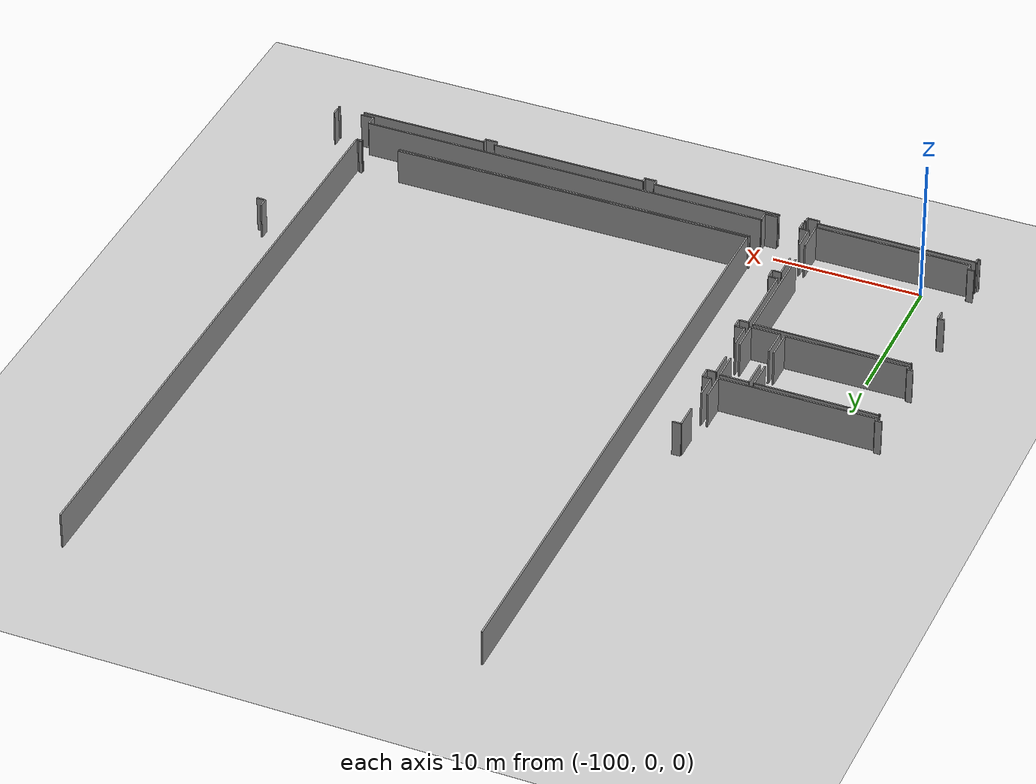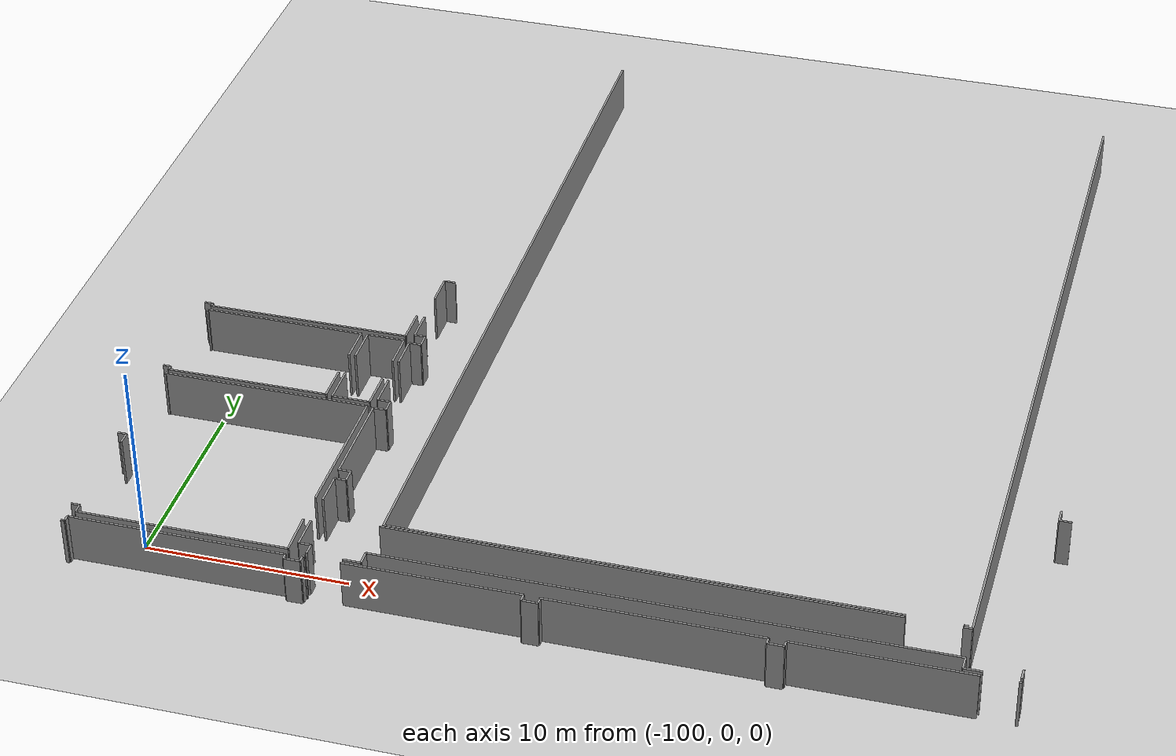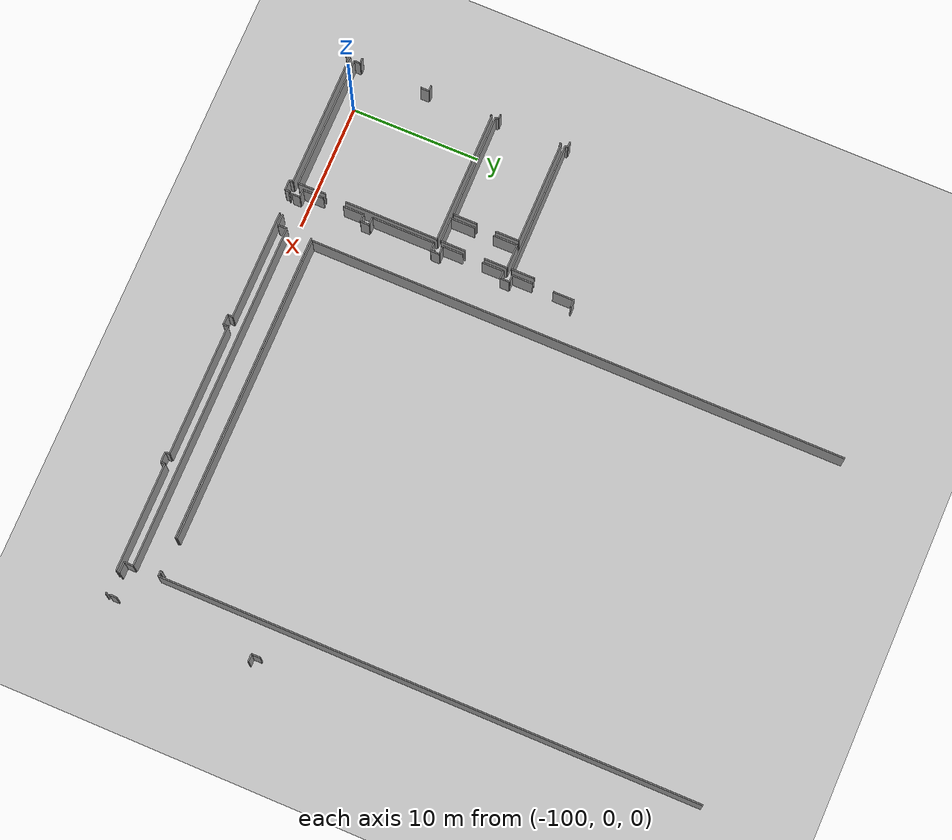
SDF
<sdf version="1.6">
 <world name="default">
  <model name="ground_plane">
   <static>1</static>
   <link name="link">
    <collision name="collision">
     <geometry><plane><normal>0 0 1</normal><size>100 100</size></plane></geometry>
     <surface><friction><ode><mu>100</mu><mu2>50</mu2></ode></friction></surface>
    </collision>
    <visual name="visual">
     <cast_shadows>0</cast_shadows>
     <geometry><plane><normal>0 0 1</normal><size>100 100</size></plane></geometry>
     <material>
      <script><uri>file://media/materials/scripts/gazebo.material</uri><name>Gazebo/Grey</name></script>
     </material>
    </visual>
   </link>
  </model>
  <model name="50015848">
   <static>1</static>
   <link name="Wall_149">
    <collision name="Wall_149_Collision">
     <geometry><box><size>0.181669404817 0.1 2.5</size></box></geometry>
     <pose>0.0908347024085 0 1.25 0 0 0</pose>
    </collision>
    <visual name="Wall_149_Visual">
     <pose>0.0908347024085 0 1.25 0 0 0</pose>
     <geometry><box><size>0.181669404817 0.1 2.5</size></box></geometry>
     <material>
      <script><uri>file://media/materials/scripts/gazebo.material</uri><name>Gazebo/Grey</name></script>
      <ambient>1 1 1 1</ambient>
     </material>
    </visual>
    <pose>28.6126775305 -45.6515423504 0 0 0 0.0</pose>
   </link>
   <link name="Wall_150">
    <collision name="Wall_150_Collision">
     <geometry><box><size>0.339234628827 0.1 2.5</size></box></geometry>
     <pose>0.169617314414 0 1.25 0 0 0</pose>
    </collision>
    <visual name="Wall_150_Visual">
     <pose>0.169617314414 0 1.25 0 0 0</pose>
     <geometry><box><size>0.339234628827 0.1 2.5</size></box></geometry>
     <material>
      <script><uri>file://media/materials/scripts/gazebo.material</uri><name>Gazebo/Grey</name></script>
      <ambient>1 1 1 1</ambient>
     </material>
    </visual>
    <pose>28.7943469353 -45.6515423504 0 0 0 1.57079632679</pose>
   </link>
   <link name="Wall_151">
    <collision name="Wall_151_Collision">
     <geometry><box><size>10.6446599725 0.1 2.5</size></box></geometry>
     <pose>5.32232998624 0 1.25 0 0 0</pose>
    </collision>
    <visual name="Wall_151_Visual">
     <pose>5.32232998624 0 1.25 0 0 0</pose>
     <geometry><box><size>10.6446599725 0.1 2.5</size></box></geometry>
     <material>
      <script><uri>file://media/materials/scripts/gazebo.material</uri><name>Gazebo/Grey</name></script>
      <ambient>1 1 1 1</ambient>
     </material>
    </visual>
    <pose>28.7943469353 -45.3123077216 0 0 0 0.0</pose>
   </link>
   <link name="Wall_152">
    <collision name="Wall_152_Collision">
     <geometry><box><size>0.290011354338 0.1 2.5</size></box></geometry>
     <pose>0.145005677169 0 1.25 0 0 0</pose>
    </collision>
    <visual name="Wall_152_Visual">
     <pose>0.145005677169 0 1.25 0 0 0</pose>
     <geometry><box><size>0.290011354338 0.1 2.5</size></box></geometry>
     <material>
      <script><uri>file://media/materials/scripts/gazebo.material</uri><name>Gazebo/Grey</name></script>
      <ambient>1 1 1 1</ambient>
     </material>
    </visual>
    <pose>39.4390069078 -45.3123077216 0 0 0 -1.57079632679</pose>
   </link>
   <link name="Wall_153">
    <collision name="Wall_153_Collision">
     <geometry><box><size>0.791632043337 0.1 2.5</size></box></geometry>
     <pose>0.395816021668 0 1.25 0 0 0</pose>
    </collision>
    <visual name="Wall_153_Visual">
     <pose>0.395816021668 0 1.25 0 0 0</pose>
     <geometry><box><size>0.791632043337 0.1 2.5</size></box></geometry>
     <material>
      <script><uri>file://media/materials/scripts/gazebo.material</uri><name>Gazebo/Grey</name></script>
      <ambient>1 1 1 1</ambient>
     </material>
    </visual>
    <pose>39.4390069078 -45.6023190759 0 0 0 0.0</pose>
   </link>
   <link name="Wall_154">
    <collision name="Wall_154_Collision">
     <geometry><box><size>0.372980481957 0.1 2.5</size></box></geometry>
     <pose>0.186490240978 0 1.25 0 0 0</pose>
    </collision>
    <visual name="Wall_154_Visual">
     <pose>0.186490240978 0 1.25 0 0 0</pose>
     <geometry><box><size>0.372980481957 0.1 2.5</size></box></geometry>
     <material>
      <script><uri>file://media/materials/scripts/gazebo.material</uri><name>Gazebo/Grey</name></script>
      <ambient>1 1 1 1</ambient>
     </material>
    </visual>
    <pose>40.2306389511 -45.6023190759 0 0 0 1.57079632679</pose>
   </link>
   <link name="Wall_155">
    <collision name="Wall_155_Collision">
     <geometry><box><size>0.11620752431 0.1 2.5</size></box></geometry>
     <pose>0.0581037621552 0 1.25 0 0 0</pose>
    </collision>
    <visual name="Wall_155_Visual">
     <pose>0.0581037621552 0 1.25 0 0 0</pose>
     <geometry><box><size>0.11620752431 0.1 2.5</size></box></geometry>
     <material>
      <script><uri>file://media/materials/scripts/gazebo.material</uri><name>Gazebo/Grey</name></script>
      <ambient>1 1 1 1</ambient>
     </material>
    </visual>
    <pose>40.2306389511 -45.229338594 0 0 0 0.0</pose>
   </link>
   <link name="Wall_156">
    <collision name="Wall_156_Collision">
     <geometry><box><size>8.62447589265 0.1 2.5</size></box></geometry>
     <pose>4.31223794632 0 1.25 0 0 0</pose>
    </collision>
    <visual name="Wall_156_Visual">
     <pose>4.31223794632 0 1.25 0 0 0</pose>
     <geometry><box><size>8.62447589265 0.1 2.5</size></box></geometry>
     <material>
      <script><uri>file://media/materials/scripts/gazebo.material</uri><name>Gazebo/Grey</name></script>
      <ambient>1 1 1 1</ambient>
     </material>
    </visual>
    <pose>42.0252586442 -45.229338594 0 0 0 0.0</pose>
   </link>
   <link name="Wall_157">
    <collision name="Wall_157_Collision">
     <geometry><box><size>0.381607241403 0.1 2.5</size></box></geometry>
     <pose>0.190803620702 0 1.25 0 0 0</pose>
    </collision>
    <visual name="Wall_157_Visual">
     <pose>0.190803620702 0 1.25 0 0 0</pose>
     <geometry><box><size>0.381607241403 0.1 2.5</size></box></geometry>
     <material>
      <script><uri>file://media/materials/scripts/gazebo.material</uri><name>Gazebo/Grey</name></script>
      <ambient>1 1 1 1</ambient>
     </material>
    </visual>
    <pose>50.6497345369 -45.229338594 0 0 0 -1.57079632679</pose>
   </link>
   <link name="Wall_158">
    <collision name="Wall_158_Collision">
     <geometry><box><size>0.786050022518 0.1 2.5</size></box></geometry>
     <pose>0.393025011259 0 1.25 0 0 0</pose>
    </collision>
    <visual name="Wall_158_Visual">
     <pose>0.393025011259 0 1.25 0 0 0</pose>
     <geometry><box><size>0.786050022518 0.1 2.5</size></box></geometry>
     <material>
      <script><uri>file://media/materials/scripts/gazebo.material</uri><name>Gazebo/Grey</name></script>
      <ambient>1 1 1 1</ambient>
     </material>
    </visual>
    <pose>50.6497345369 -45.6109458354 0 0 0 0.0</pose>
   </link>
   <link name="Wall_159">
    <collision name="Wall_159_Collision">
     <geometry><box><size>0.353443409092 0.1 2.5</size></box></geometry>
     <pose>0.176721704546 0 1.25 0 0 0</pose>
    </collision>
    <visual name="Wall_159_Visual">
     <pose>0.176721704546 0 1.25 0 0 0</pose>
     <geometry><box><size>0.353443409092 0.1 2.5</size></box></geometry>
     <material>
      <script><uri>file://media/materials/scripts/gazebo.material</uri><name>Gazebo/Grey</name></script>
      <ambient>1 1 1 1</ambient>
     </material>
    </visual>
    <pose>51.4357845594 -45.6109458354 0 0 0 1.57079632679</pose>
   </link>
   <link name="Wall_160">
    <collision name="Wall_160_Collision">
     <geometry><box><size>10.4018420669 0.1 2.5</size></box></geometry>
     <pose>5.20092103344 0 1.25 0 0 0</pose>
    </collision>
    <visual name="Wall_160_Visual">
     <pose>5.20092103344 0 1.25 0 0 0</pose>
     <geometry><box><size>10.4018420669 0.1 2.5</size></box></geometry>
     <material>
      <script><uri>file://media/materials/scripts/gazebo.material</uri><name>Gazebo/Grey</name></script>
      <ambient>1 1 1 1</ambient>
     </material>
    </visual>
    <pose>51.4357845594 -45.2575024263 0 0 0 0.0</pose>
   </link>
   <link name="Wall_161">
    <collision name="Wall_161_Collision">
     <geometry><box><size>0.336951074856 0.1 2.5</size></box></geometry>
     <pose>0.168475537428 0 1.25 0 0 0</pose>
    </collision>
    <visual name="Wall_161_Visual">
     <pose>0.168475537428 0 1.25 0 0 0</pose>
     <geometry><box><size>0.336951074856 0.1 2.5</size></box></geometry>
     <material>
      <script><uri>file://media/materials/scripts/gazebo.material</uri><name>Gazebo/Grey</name></script>
      <ambient>1 1 1 1</ambient>
     </material>
    </visual>
    <pose>61.8376266262 -45.2575024263 0 0 0 -1.57079632679</pose>
   </link>
   <link name="Wall_162">
    <collision name="Wall_162_Collision">
     <geometry><box><size>0.796452879498 0.1 2.5</size></box></geometry>
     <pose>0.398226439749 0 1.25 0 0 0</pose>
    </collision>
    <visual name="Wall_162_Visual">
     <pose>0.398226439749 0 1.25 0 0 0</pose>
     <geometry><box><size>0.796452879498 0.1 2.5</size></box></geometry>
     <material>
      <script><uri>file://media/materials/scripts/gazebo.material</uri><name>Gazebo/Grey</name></script>
      <ambient>1 1 1 1</ambient>
     </material>
    </visual>
    <pose>61.8376266262 -45.5944535011 0 0 0 0.0</pose>
   </link>
   <link name="Wall_163">
    <collision name="Wall_163_Collision">
     <geometry><box><size>0.331876510476 0.1 2.5</size></box></geometry>
     <pose>0.165938255238 0 1.25 0 0 0</pose>
    </collision>
    <visual name="Wall_163_Visual">
     <pose>0.165938255238 0 1.25 0 0 0</pose>
     <geometry><box><size>0.331876510476 0.1 2.5</size></box></geometry>
     <material>
      <script><uri>file://media/materials/scripts/gazebo.material</uri><name>Gazebo/Grey</name></script>
      <ambient>1 1 1 1</ambient>
     </material>
    </visual>
    <pose>62.6340795057 -45.5944535011 0 0 0 1.57079632679</pose>
   </link>
   <link name="Wall_164">
    <collision name="Wall_164_Collision">
     <geometry><box><size>8.5597751968 0.1 2.5</size></box></geometry>
     <pose>4.2798875984 0 1.25 0 0 0</pose>
    </collision>
    <visual name="Wall_164_Visual">
     <pose>4.2798875984 0 1.25 0 0 0</pose>
     <geometry><box><size>8.5597751968 0.1 2.5</size></box></geometry>
     <material>
      <script><uri>file://media/materials/scripts/gazebo.material</uri><name>Gazebo/Grey</name></script>
      <ambient>1 1 1 1</ambient>
     </material>
    </visual>
    <pose>62.6340795057 -45.2625769907 0 0 0 0.0</pose>
   </link>
   <link name="Wall_165">
    <collision name="Wall_165_Collision">
     <geometry><box><size>0.137520694708 0.1 2.5</size></box></geometry>
     <pose>0.0687603473539 0 1.25 0 0 0</pose>
    </collision>
    <visual name="Wall_165_Visual">
     <pose>0.0687603473539 0 1.25 0 0 0</pose>
     <geometry><box><size>0.137520694708 0.1 2.5</size></box></geometry>
     <material>
      <script><uri>file://media/materials/scripts/gazebo.material</uri><name>Gazebo/Grey</name></script>
      <ambient>1 1 1 1</ambient>
     </material>
    </visual>
    <pose>72.8905353031 -45.2625769907 0 0 0 0.0</pose>
   </link>
   <link name="Wall_178">
    <collision name="Wall_178_Collision">
     <geometry><box><size>0.554649886774 0.1 2.5</size></box></geometry>
     <pose>0.277324943387 0 1.25 0 0 0</pose>
    </collision>
    <visual name="Wall_178_Visual">
     <pose>0.277324943387 0 1.25 0 0 0</pose>
     <geometry><box><size>0.554649886774 0.1 2.5</size></box></geometry>
     <material>
      <script><uri>file://media/materials/scripts/gazebo.material</uri><name>Gazebo/Grey</name></script>
      <ambient>1 1 1 1</ambient>
     </material>
    </visual>
    <pose>72.9572658247 -44.4285723347 0 0 0 -1.57079632679</pose>
   </link>
   <link name="Wall_179">
    <collision name="Wall_179_Collision">
     <geometry><box><size>0.870541519451 0.1 2.5</size></box></geometry>
     <pose>0.435270759726 0 1.25 0 0 0</pose>
    </collision>
    <visual name="Wall_179_Visual">
     <pose>0.435270759726 0 1.25 0 0 0</pose>
     <geometry><box><size>0.870541519451 0.1 2.5</size></box></geometry>
     <material>
      <script><uri>file://media/materials/scripts/gazebo.material</uri><name>Gazebo/Grey</name></script>
      <ambient>1 1 1 1</ambient>
     </material>
    </visual>
    <pose>71.2570330291 -44.9832222215 0 0 0 3.14159265359</pose>
   </link>
   <link name="Wall_180">
    <collision name="Wall_180_Collision">
     <geometry><box><size>0.699528699833 0.1 2.5</size></box></geometry>
     <pose>0.349764349917 0 1.25 0 0 0</pose>
    </collision>
    <visual name="Wall_180_Visual">
     <pose>0.349764349917 0 1.25 0 0 0</pose>
     <geometry><box><size>0.699528699833 0.1 2.5</size></box></geometry>
     <material>
      <script><uri>file://media/materials/scripts/gazebo.material</uri><name>Gazebo/Grey</name></script>
      <ambient>1 1 1 1</ambient>
     </material>
    </visual>
    <pose>70.3864915096 -44.9832222215 0 0 0 1.57079632679</pose>
   </link>
   <link name="Wall_181">
    <collision name="Wall_181_Collision">
     <geometry><box><size>27.461766329 0.1 2.5</size></box></geometry>
     <pose>13.7308831645 0 1.25 0 0 0</pose>
    </collision>
    <visual name="Wall_181_Visual">
     <pose>13.7308831645 0 1.25 0 0 0</pose>
     <geometry><box><size>27.461766329 0.1 2.5</size></box></geometry>
     <material>
      <script><uri>file://media/materials/scripts/gazebo.material</uri><name>Gazebo/Grey</name></script>
      <ambient>1 1 1 1</ambient>
     </material>
    </visual>
    <pose>70.3864915096 -44.2836935217 0 0 0 3.14159265359</pose>
   </link>
   <link name="Wall_182">
    <collision name="Wall_182_Collision">
     <geometry><box><size>0.71069274147 0.1 2.5</size></box></geometry>
     <pose>0.355346370735 0 1.25 0 0 0</pose>
    </collision>
    <visual name="Wall_182_Visual">
     <pose>0.355346370735 0 1.25 0 0 0</pose>
     <geometry><box><size>0.71069274147 0.1 2.5</size></box></geometry>
     <material>
      <script><uri>file://media/materials/scripts/gazebo.material</uri><name>Gazebo/Grey</name></script>
      <ambient>1 1 1 1</ambient>
     </material>
    </visual>
    <pose>42.9247251806 -44.2836935217 0 0 0 -1.57079632679</pose>
   </link>
   <link name="Wall_183">
    <collision name="Wall_183_Collision">
     <geometry><box><size>0.872063888766 0.1 2.5</size></box></geometry>
     <pose>0.436031944383 0 1.25 0 0 0</pose>
    </collision>
    <visual name="Wall_183_Visual">
     <pose>0.436031944383 0 1.25 0 0 0</pose>
     <geometry><box><size>0.872063888766 0.1 2.5</size></box></geometry>
     <material>
      <script><uri>file://media/materials/scripts/gazebo.material</uri><name>Gazebo/Grey</name></script>
      <ambient>1 1 1 1</ambient>
     </material>
    </visual>
    <pose>42.9247251806 -44.9943862632 0 0 0 3.14159265359</pose>
   </link>
   <link name="Wall_184">
    <collision name="Wall_184_Collision">
     <geometry><box><size>0.609201453863 0.1 2.5</size></box></geometry>
     <pose>0.304600726931 0 1.25 0 0 0</pose>
    </collision>
    <visual name="Wall_184_Visual">
     <pose>0.304600726931 0 1.25 0 0 0</pose>
     <geometry><box><size>0.609201453863 0.1 2.5</size></box></geometry>
     <material>
      <script><uri>file://media/materials/scripts/gazebo.material</uri><name>Gazebo/Grey</name></script>
      <ambient>1 1 1 1</ambient>
     </material>
    </visual>
    <pose>40.3280705872 -44.9943862632 0 0 0 1.57079632679</pose>
   </link>
   <link name="Wall_185">
    <collision name="Wall_185_Collision">
     <geometry><box><size>0.602858248387 0.1 2.5</size></box></geometry>
     <pose>0.301429124194 0 1.25 0 0 0</pose>
    </collision>
    <visual name="Wall_185_Visual">
     <pose>0.301429124194 0 1.25 0 0 0</pose>
     <geometry><box><size>0.602858248387 0.1 2.5</size></box></geometry>
     <material>
      <script><uri>file://media/materials/scripts/gazebo.material</uri><name>Gazebo/Grey</name></script>
      <ambient>1 1 1 1</ambient>
     </material>
    </visual>
    <pose>40.3280705872 -44.3851848093 0 0 0 3.14159265359</pose>
   </link>
   <link name="Wall_186">
    <collision name="Wall_186_Collision">
     <geometry><box><size>1.6636959321 0.1 2.5</size></box></geometry>
     <pose>0.831847966051 0 1.25 0 0 0</pose>
    </collision>
    <visual name="Wall_186_Visual">
     <pose>0.831847966051 0 1.25 0 0 0</pose>
     <geometry><box><size>1.6636959321 0.1 2.5</size></box></geometry>
     <material>
      <script><uri>file://media/materials/scripts/gazebo.material</uri><name>Gazebo/Grey</name></script>
      <ambient>1 1 1 1</ambient>
     </material>
    </visual>
    <pose>39.7252123388 -44.3851848093 0 0 0 1.57079632679</pose>
   </link>
   <link name="Wall_187">
    <collision name="Wall_187_Collision">
     <geometry><box><size>1.63274108938 0.1 2.5</size></box></geometry>
     <pose>0.816370544691 0 1.25 0 0 0</pose>
    </collision>
    <visual name="Wall_187_Visual">
     <pose>0.816370544691 0 1.25 0 0 0</pose>
     <geometry><box><size>1.63274108938 0.1 2.5</size></box></geometry>
     <material>
      <script><uri>file://media/materials/scripts/gazebo.material</uri><name>Gazebo/Grey</name></script>
      <ambient>1 1 1 1</ambient>
     </material>
    </visual>
    <pose>39.7252123388 -41.1189414459 0 0 0 1.57079632679</pose>
   </link>
   <link name="Wall_188">
    <collision name="Wall_188_Collision">
     <geometry><box><size>0.568858667039 0.1 2.5</size></box></geometry>
     <pose>0.284429333519 0 1.25 0 0 0</pose>
    </collision>
    <visual name="Wall_188_Visual">
     <pose>0.284429333519 0 1.25 0 0 0</pose>
     <geometry><box><size>0.568858667039 0.1 2.5</size></box></geometry>
     <material>
      <script><uri>file://media/materials/scripts/gazebo.material</uri><name>Gazebo/Grey</name></script>
      <ambient>1 1 1 1</ambient>
     </material>
    </visual>
    <pose>39.7252123388 -39.4862003565 0 0 0 0.0</pose>
   </link>
   <link name="Wall_189">
    <collision name="Wall_189_Collision">
     <geometry><box><size>0.684051278473 0.1 2.5</size></box></geometry>
     <pose>0.342025639237 0 1.25 0 0 0</pose>
    </collision>
    <visual name="Wall_189_Visual">
     <pose>0.342025639237 0 1.25 0 0 0</pose>
     <geometry><box><size>0.684051278473 0.1 2.5</size></box></geometry>
     <material>
      <script><uri>file://media/materials/scripts/gazebo.material</uri><name>Gazebo/Grey</name></script>
      <ambient>1 1 1 1</ambient>
     </material>
    </visual>
    <pose>40.2940710058 -39.4862003565 0 0 0 1.57079632679</pose>
   </link>
   <link name="Wall_190">
    <collision name="Wall_190_Collision">
     <geometry><box><size>0.595753858255 0.1 2.5</size></box></geometry>
     <pose>0.297876929127 0 1.25 0 0 0</pose>
    </collision>
    <visual name="Wall_190_Visual">
     <pose>0.297876929127 0 1.25 0 0 0</pose>
     <geometry><box><size>0.595753858255 0.1 2.5</size></box></geometry>
     <material>
      <script><uri>file://media/materials/scripts/gazebo.material</uri><name>Gazebo/Grey</name></script>
      <ambient>1 1 1 1</ambient>
     </material>
    </visual>
    <pose>40.2940710058 -38.802149078 0 0 0 3.14159265359</pose>
   </link>
   <link name="Wall_191">
    <collision name="Wall_191_Collision">
     <geometry><box><size>4.98043121111 0.1 2.5</size></box></geometry>
     <pose>2.49021560555 0 1.25 0 0 0</pose>
    </collision>
    <visual name="Wall_191_Visual">
     <pose>2.49021560555 0 1.25 0 0 0</pose>
     <geometry><box><size>4.98043121111 0.1 2.5</size></box></geometry>
     <material>
      <script><uri>file://media/materials/scripts/gazebo.material</uri><name>Gazebo/Grey</name></script>
      <ambient>1 1 1 1</ambient>
     </material>
    </visual>
    <pose>39.6983171476 -38.802149078 0 0 0 1.57079632679</pose>
   </link>
   <link name="Wall_192">
    <collision name="Wall_192_Collision">
     <geometry><box><size>0.645738317401 0.1 2.5</size></box></geometry>
     <pose>0.322869158701 0 1.25 0 0 0</pose>
    </collision>
    <visual name="Wall_192_Visual">
     <pose>0.322869158701 0 1.25 0 0 0</pose>
     <geometry><box><size>0.645738317401 0.1 2.5</size></box></geometry>
     <material>
      <script><uri>file://media/materials/scripts/gazebo.material</uri><name>Gazebo/Grey</name></script>
      <ambient>1 1 1 1</ambient>
     </material>
    </visual>
    <pose>39.6983171476 -33.8217178669 0 0 0 0.0</pose>
   </link>
   <link name="Wall_193">
    <collision name="Wall_193_Collision">
     <geometry><box><size>0.671618595741 0.1 2.5</size></box></geometry>
     <pose>0.335809297871 0 1.25 0 0 0</pose>
    </collision>
    <visual name="Wall_193_Visual">
     <pose>0.335809297871 0 1.25 0 0 0</pose>
     <geometry><box><size>0.671618595741 0.1 2.5</size></box></geometry>
     <material>
      <script><uri>file://media/materials/scripts/gazebo.material</uri><name>Gazebo/Grey</name></script>
      <ambient>1 1 1 1</ambient>
     </material>
    </visual>
    <pose>40.344055465 -33.8217178669 0 0 0 1.57079632679</pose>
   </link>
   <link name="Wall_194">
    <collision name="Wall_194_Collision">
     <geometry><box><size>0.652335251096 0.1 2.5</size></box></geometry>
     <pose>0.326167625548 0 1.25 0 0 0</pose>
    </collision>
    <visual name="Wall_194_Visual">
     <pose>0.326167625548 0 1.25 0 0 0</pose>
     <geometry><box><size>0.652335251096 0.1 2.5</size></box></geometry>
     <material>
      <script><uri>file://media/materials/scripts/gazebo.material</uri><name>Gazebo/Grey</name></script>
      <ambient>1 1 1 1</ambient>
     </material>
    </visual>
    <pose>40.344055465 -33.1500992712 0 0 0 3.14159265359</pose>
   </link>
   <link name="Wall_195">
    <collision name="Wall_195_Collision">
     <geometry><box><size>1.63071126363 0.1 2.5</size></box></geometry>
     <pose>0.815355631815 0 1.25 0 0 0</pose>
    </collision>
    <visual name="Wall_195_Visual">
     <pose>0.815355631815 0 1.25 0 0 0</pose>
     <geometry><box><size>1.63071126363 0.1 2.5</size></box></geometry>
     <material>
      <script><uri>file://media/materials/scripts/gazebo.material</uri><name>Gazebo/Grey</name></script>
      <ambient>1 1 1 1</ambient>
     </material>
    </visual>
    <pose>39.6917202139 -33.1500992712 0 0 0 1.57079632679</pose>
   </link>
   <link name="Wall_196">
    <collision name="Wall_196_Collision">
     <geometry><box><size>1.67765098415 0.1 2.5</size></box></geometry>
     <pose>0.838825492074 0 1.25 0 0 0</pose>
    </collision>
    <visual name="Wall_196_Visual">
     <pose>0.838825492074 0 1.25 0 0 0</pose>
     <geometry><box><size>1.67765098415 0.1 2.5</size></box></geometry>
     <material>
      <script><uri>file://media/materials/scripts/gazebo.material</uri><name>Gazebo/Grey</name></script>
      <ambient>1 1 1 1</ambient>
     </material>
    </visual>
    <pose>39.6917202139 -29.9683474047 0 0 0 1.57079632679</pose>
   </link>
   <link name="Wall_197">
    <collision name="Wall_197_Collision">
     <geometry><box><size>0.599813509759 0.1 2.5</size></box></geometry>
     <pose>0.29990675488 0 1.25 0 0 0</pose>
    </collision>
    <visual name="Wall_197_Visual">
     <pose>0.29990675488 0 1.25 0 0 0</pose>
     <geometry><box><size>0.599813509759 0.1 2.5</size></box></geometry>
     <material>
      <script><uri>file://media/materials/scripts/gazebo.material</uri><name>Gazebo/Grey</name></script>
      <ambient>1 1 1 1</ambient>
     </material>
    </visual>
    <pose>39.6917202139 -28.2906964205 0 0 0 0.0</pose>
   </link>
   <link name="Wall_198">
    <collision name="Wall_198_Collision">
     <geometry><box><size>0.719065772698 0.1 2.5</size></box></geometry>
     <pose>0.359532886349 0 1.25 0 0 0</pose>
    </collision>
    <visual name="Wall_198_Visual">
     <pose>0.359532886349 0 1.25 0 0 0</pose>
     <geometry><box><size>0.719065772698 0.1 2.5</size></box></geometry>
     <material>
      <script><uri>file://media/materials/scripts/gazebo.material</uri><name>Gazebo/Grey</name></script>
      <ambient>1 1 1 1</ambient>
     </material>
    </visual>
    <pose>40.2915337237 -28.2906964205 0 0 0 1.57079632679</pose>
   </link>
   <link name="Wall_199">
    <collision name="Wall_199_Collision">
     <geometry><box><size>0.555157343212 0.1 2.5</size></box></geometry>
     <pose>0.277578671606 0 1.25 0 0 0</pose>
    </collision>
    <visual name="Wall_199_Visual">
     <pose>0.277578671606 0 1.25 0 0 0</pose>
     <geometry><box><size>0.555157343212 0.1 2.5</size></box></geometry>
     <material>
      <script><uri>file://media/materials/scripts/gazebo.material</uri><name>Gazebo/Grey</name></script>
      <ambient>1 1 1 1</ambient>
     </material>
    </visual>
    <pose>40.2915337237 -27.5716306478 0 0 0 3.14159265359</pose>
   </link>
   <link name="Wall_200">
    <collision name="Wall_200_Collision">
     <geometry><box><size>1.62741279678 0.1 2.5</size></box></geometry>
     <pose>0.813706398391 0 1.25 0 0 0</pose>
    </collision>
    <visual name="Wall_200_Visual">
     <pose>0.813706398391 0 1.25 0 0 0</pose>
     <geometry><box><size>1.62741279678 0.1 2.5</size></box></geometry>
     <material>
      <script><uri>file://media/materials/scripts/gazebo.material</uri><name>Gazebo/Grey</name></script>
      <ambient>1 1 1 1</ambient>
     </material>
    </visual>
    <pose>39.7363763804 -27.5716306478 0 0 0 1.57079632679</pose>
   </link>
   <link name="Wall_201">
    <collision name="Wall_201_Collision">
     <geometry><box><size>1.627666525 0.1 2.5</size></box></geometry>
     <pose>0.813833262501 0 1.25 0 0 0</pose>
    </collision>
    <visual name="Wall_201_Visual">
     <pose>0.813833262501 0 1.25 0 0 0</pose>
     <geometry><box><size>1.627666525 0.1 2.5</size></box></geometry>
     <material>
      <script><uri>file://media/materials/scripts/gazebo.material</uri><name>Gazebo/Grey</name></script>
      <ambient>1 1 1 1</ambient>
     </material>
    </visual>
    <pose>39.7363763804 -24.3066559255 0 0 0 1.57079632679</pose>
   </link>
   <link name="Wall_202">
    <collision name="Wall_202_Collision">
     <geometry><box><size>0.580022708676 0.1 2.5</size></box></geometry>
     <pose>0.290011354338 0 1.25 0 0 0</pose>
    </collision>
    <visual name="Wall_202_Visual">
     <pose>0.290011354338 0 1.25 0 0 0</pose>
     <geometry><box><size>0.580022708676 0.1 2.5</size></box></geometry>
     <material>
      <script><uri>file://media/materials/scripts/gazebo.material</uri><name>Gazebo/Grey</name></script>
      <ambient>1 1 1 1</ambient>
     </material>
    </visual>
    <pose>39.7363763804 -22.6789894005 0 0 0 0.0</pose>
   </link>
   <link name="Wall_225">
    <collision name="Wall_225_Collision">
     <geometry><box><size>24.452042195 0.1 2.5</size></box></geometry>
     <pose>12.2260210975 0 1.25 0 0 0</pose>
    </collision>
    <visual name="Wall_225_Visual">
     <pose>12.2260210975 0 1.25 0 0 0</pose>
     <geometry><box><size>24.452042195 0.1 2.5</size></box></geometry>
     <material>
      <script><uri>file://media/materials/scripts/gazebo.material</uri><name>Gazebo/Grey</name></script>
      <ambient>1 1 1 1</ambient>
     </material>
    </visual>
    <pose>42.9026508256 -42.3150162703 0 0 0 0.0</pose>
   </link>
   <link name="Wall_226">
    <collision name="Wall_226_Collision">
     <geometry><box><size>0.420681387132 0.1 2.5</size></box></geometry>
     <pose>0.210340693566 0 1.25 0 0 0</pose>
    </collision>
    <visual name="Wall_226_Visual">
     <pose>0.210340693566 0 1.25 0 0 0</pose>
     <geometry><box><size>0.420681387132 0.1 2.5</size></box></geometry>
     <material>
      <script><uri>file://media/materials/scripts/gazebo.material</uri><name>Gazebo/Grey</name></script>
      <ambient>1 1 1 1</ambient>
     </material>
    </visual>
    <pose>69.9368851055 -42.3150162703 0 0 0 0.0</pose>
   </link>
   <link name="Wall_227">
    <collision name="Wall_227_Collision">
     <geometry><box><size>42.2632557136 0.1 2.5</size></box></geometry>
     <pose>21.1316278568 0 1.25 0 0 0</pose>
    </collision>
    <visual name="Wall_227_Visual">
     <pose>21.1316278568 0 1.25 0 0 0</pose>
     <geometry><box><size>42.2632557136 0.1 2.5</size></box></geometry>
     <material>
      <script><uri>file://media/materials/scripts/gazebo.material</uri><name>Gazebo/Grey</name></script>
      <ambient>1 1 1 1</ambient>
     </material>
    </visual>
    <pose>70.3575664927 -42.3150162703 0 0 0 1.57079632679</pose>
   </link>
   <link name="Wall_258">
    <collision name="Wall_258_Collision">
     <geometry><box><size>0.685066191349 0.1 2.5</size></box></geometry>
     <pose>0.342533095675 0 1.25 0 0 0</pose>
    </collision>
    <visual name="Wall_258_Visual">
     <pose>0.342533095675 0 1.25 0 0 0</pose>
     <geometry><box><size>0.685066191349 0.1 2.5</size></box></geometry>
     <material>
      <script><uri>file://media/materials/scripts/gazebo.material</uri><name>Gazebo/Grey</name></script>
      <ambient>1 1 1 1</ambient>
     </material>
    </visual>
    <pose>72.9258035256 -33.1559350202 0 0 0 -1.57079632679</pose>
   </link>
   <link name="Wall_259">
    <collision name="Wall_259_Collision">
     <geometry><box><size>0.592962847846 0.1 2.5</size></box></geometry>
     <pose>0.296481423923 0 1.25 0 0 0</pose>
    </collision>
    <visual name="Wall_259_Visual">
     <pose>0.296481423923 0 1.25 0 0 0</pose>
     <geometry><box><size>0.592962847846 0.1 2.5</size></box></geometry>
     <material>
      <script><uri>file://media/materials/scripts/gazebo.material</uri><name>Gazebo/Grey</name></script>
      <ambient>1 1 1 1</ambient>
     </material>
    </visual>
    <pose>72.9258035256 -33.8410012116 0 0 0 0.0</pose>
   </link>
   <link name="Wall_265">
    <collision name="Wall_265_Collision">
     <geometry><box><size>24.3058947408 0.1 2.5</size></box></geometry>
     <pose>12.1529473704 0 1.25 0 0 0</pose>
    </collision>
    <visual name="Wall_265_Visual">
     <pose>12.1529473704 0 1.25 0 0 0</pose>
     <geometry><box><size>24.3058947408 0.1 2.5</size></box></geometry>
     <material>
      <script><uri>file://media/materials/scripts/gazebo.material</uri><name>Gazebo/Grey</name></script>
      <ambient>1 1 1 1</ambient>
     </material>
    </visual>
    <pose>67.3590064003 -42.1868835197 0 0 0 3.14159265359</pose>
   </link>
   <link name="Wall_266">
    <collision name="Wall_266_Collision">
     <geometry><box><size>42.1787642167 0.1 2.5</size></box></geometry>
     <pose>21.0893821084 0 1.25 0 0 0</pose>
    </collision>
    <visual name="Wall_266_Visual">
     <pose>21.0893821084 0 1.25 0 0 0</pose>
     <geometry><box><size>42.1787642167 0.1 2.5</size></box></geometry>
     <material>
      <script><uri>file://media/materials/scripts/gazebo.material</uri><name>Gazebo/Grey</name></script>
      <ambient>1 1 1 1</ambient>
     </material>
    </visual>
    <pose>43.0531116594 -42.1868835197 0 0 0 1.57079632679</pose>
   </link>
   <link name="Wall_281">
    <collision name="Wall_281_Collision">
     <geometry><box><size>0.214146616851 0.1 2.5</size></box></geometry>
     <pose>0.107073308426 0 1.25 0 0 0</pose>
    </collision>
    <visual name="Wall_281_Visual">
     <pose>0.107073308426 0 1.25 0 0 0</pose>
     <geometry><box><size>0.214146616851 0.1 2.5</size></box></geometry>
     <material>
      <script><uri>file://media/materials/scripts/gazebo.material</uri><name>Gazebo/Grey</name></script>
      <ambient>1 1 1 1</ambient>
     </material>
    </visual>
    <pose>70.1629569487 -42.204644495 0 0 0 3.14159265359</pose>
   </link>
   <link name="Wall_319">
    <collision name="Wall_319_Collision">
     <geometry><box><size>0.207295954938 0.1 2.5</size></box></geometry>
     <pose>0.103647977469 0 1.25 0 0 0</pose>
    </collision>
    <visual name="Wall_319_Visual">
     <pose>0.103647977469 0 1.25 0 0 0</pose>
     <geometry><box><size>0.207295954938 0.1 2.5</size></box></geometry>
     <material>
      <script><uri>file://media/materials/scripts/gazebo.material</uri><name>Gazebo/Grey</name></script>
      <ambient>1 1 1 1</ambient>
     </material>
    </visual>
    <pose>29.0333589176 -27.8111500866 0 0 0 1.57079632679</pose>
   </link>
   <link name="Wall_320">
    <collision name="Wall_320_Collision">
     <geometry><box><size>0.439711003559 0.1 2.5</size></box></geometry>
     <pose>0.219855501779 0 1.25 0 0 0</pose>
    </collision>
    <visual name="Wall_320_Visual">
     <pose>0.219855501779 0 1.25 0 0 0</pose>
     <geometry><box><size>0.439711003559 0.1 2.5</size></box></geometry>
     <material>
      <script><uri>file://media/materials/scripts/gazebo.material</uri><name>Gazebo/Grey</name></script>
      <ambient>1 1 1 1</ambient>
     </material>
    </visual>
    <pose>29.0333589176 -27.6038541316 0 0 0 3.14159265359</pose>
   </link>
   <link name="Wall_326">
    <collision name="Wall_326_Collision">
     <geometry><box><size>1.79893307284 0.1 2.5</size></box></geometry>
     <pose>0.89946653642 0 1.25 0 0 0</pose>
    </collision>
    <visual name="Wall_326_Visual">
     <pose>0.89946653642 0 1.25 0 0 0</pose>
     <geometry><box><size>1.79893307284 0.1 2.5</size></box></geometry>
     <material>
      <script><uri>file://media/materials/scripts/gazebo.material</uri><name>Gazebo/Grey</name></script>
      <ambient>1 1 1 1</ambient>
     </material>
    </visual>
    <pose>39.332694784 -25.9756801502 0 0 0 -1.57079632679</pose>
   </link>
   <link name="Wall_327">
    <collision name="Wall_327_Collision">
     <geometry><box><size>10.2994006734 0.1 2.5</size></box></geometry>
     <pose>5.1497003367 0 1.25 0 0 0</pose>
    </collision>
    <visual name="Wall_327_Visual">
     <pose>5.1497003367 0 1.25 0 0 0</pose>
     <geometry><box><size>10.2994006734 0.1 2.5</size></box></geometry>
     <material>
      <script><uri>file://media/materials/scripts/gazebo.material</uri><name>Gazebo/Grey</name></script>
      <ambient>1 1 1 1</ambient>
     </material>
    </visual>
    <pose>39.332694784 -27.774613223 0 0 0 -3.13804517143</pose>
   </link>
   <link name="Wall_328">
    <collision name="Wall_328_Collision">
     <geometry><box><size>0.252205849704 0.1 2.5</size></box></geometry>
     <pose>0.126102924852 0 1.25 0 0 0</pose>
    </collision>
    <visual name="Wall_328_Visual">
     <pose>0.126102924852 0 1.25 0 0 0</pose>
     <geometry><box><size>0.252205849704 0.1 2.5</size></box></geometry>
     <material>
      <script><uri>file://media/materials/scripts/gazebo.material</uri><name>Gazebo/Grey</name></script>
      <ambient>1 1 1 1</ambient>
     </material>
    </visual>
    <pose>29.0011354338 -33.4373196151 0 0 0 1.57079632679</pose>
   </link>
   <link name="Wall_329">
    <collision name="Wall_329_Collision">
     <geometry><box><size>0.390995185507 0.1 2.5</size></box></geometry>
     <pose>0.195497592754 0 1.25 0 0 0</pose>
    </collision>
    <visual name="Wall_329_Visual">
     <pose>0.195497592754 0 1.25 0 0 0</pose>
     <geometry><box><size>0.390995185507 0.1 2.5</size></box></geometry>
     <material>
      <script><uri>file://media/materials/scripts/gazebo.material</uri><name>Gazebo/Grey</name></script>
      <ambient>1 1 1 1</ambient>
     </material>
    </visual>
    <pose>29.0011354338 -33.1851137654 0 0 0 3.14159265359</pose>
   </link>
   <link name="Wall_332">
    <collision name="Wall_332_Collision">
     <geometry><box><size>0.133461043204 0.1 2.5</size></box></geometry>
     <pose>0.0667305216018 0 1.25 0 0 0</pose>
    </collision>
    <visual name="Wall_332_Visual">
     <pose>0.0667305216018 0 1.25 0 0 0</pose>
     <geometry><box><size>0.133461043204 0.1 2.5</size></box></geometry>
     <material>
      <script><uri>file://media/materials/scripts/gazebo.material</uri><name>Gazebo/Grey</name></script>
      <ambient>1 1 1 1</ambient>
     </material>
    </visual>
    <pose>28.9942847719 -28.2896815077 0 0 0 1.57079632679</pose>
   </link>
   <link name="Wall_333">
    <collision name="Wall_333_Collision">
     <geometry><box><size>8.13681025569 0.1 2.5</size></box></geometry>
     <pose>4.06840512785 0 1.25 0 0 0</pose>
    </collision>
    <visual name="Wall_333_Visual">
     <pose>4.06840512785 0 1.25 0 0 0</pose>
     <geometry><box><size>8.13681025569 0.1 2.5</size></box></geometry>
     <material>
      <script><uri>file://media/materials/scripts/gazebo.material</uri><name>Gazebo/Grey</name></script>
      <ambient>1 1 1 1</ambient>
     </material>
    </visual>
    <pose>28.9942847719 -28.1562204644 0 0 0 0.0</pose>
   </link>
   <link name="Wall_334">
    <collision name="Wall_334_Collision">
     <geometry><box><size>1.85373836815 0.1 2.5</size></box></geometry>
     <pose>0.926869184073 0 1.25 0 0 0</pose>
    </collision>
    <visual name="Wall_334_Visual">
     <pose>0.926869184073 0 1.25 0 0 0</pose>
     <geometry><box><size>1.85373836815 0.1 2.5</size></box></geometry>
     <material>
      <script><uri>file://media/materials/scripts/gazebo.material</uri><name>Gazebo/Grey</name></script>
      <ambient>1 1 1 1</ambient>
     </material>
    </visual>
    <pose>37.1310950276 -28.1562204644 0 0 0 -1.57079632679</pose>
   </link>
   <link name="Wall_335">
    <collision name="Wall_335_Collision">
     <geometry><box><size>1.88570812374 0.1 2.5</size></box></geometry>
     <pose>0.942854061872 0 1.25 0 0 0</pose>
    </collision>
    <visual name="Wall_335_Visual">
     <pose>0.942854061872 0 1.25 0 0 0</pose>
     <geometry><box><size>1.88570812374 0.1 2.5</size></box></geometry>
     <material>
      <script><uri>file://media/materials/scripts/gazebo.material</uri><name>Gazebo/Grey</name></script>
      <ambient>1 1 1 1</ambient>
     </material>
    </visual>
    <pose>37.1310950276 -31.490970447 0 0 0 -1.57079632679</pose>
   </link>
   <link name="Wall_336">
    <collision name="Wall_336_Collision">
     <geometry><box><size>8.1301857502 0.1 2.5</size></box></geometry>
     <pose>4.0650928751 0 1.25 0 0 0</pose>
    </collision>
    <visual name="Wall_336_Visual">
     <pose>4.0650928751 0 1.25 0 0 0</pose>
     <geometry><box><size>8.1301857502 0.1 2.5</size></box></geometry>
     <material>
      <script><uri>file://media/materials/scripts/gazebo.material</uri><name>Gazebo/Grey</name></script>
      <ambient>1 1 1 1</ambient>
     </material>
    </visual>
    <pose>37.1310950276 -33.3766785707 0 0 0 -3.1341338318</pose>
   </link>
   <link name="Wall_337">
    <collision name="Wall_337_Collision">
     <geometry><box><size>1.92985683385 0.1 2.5</size></box></geometry>
     <pose>0.964928416926 0 1.25 0 0 0</pose>
    </collision>
    <visual name="Wall_337_Visual">
     <pose>0.964928416926 0 1.25 0 0 0</pose>
     <geometry><box><size>1.92985683385 0.1 2.5</size></box></geometry>
     <material>
      <script><uri>file://media/materials/scripts/gazebo.material</uri><name>Gazebo/Grey</name></script>
      <ambient>1 1 1 1</ambient>
     </material>
    </visual>
    <pose>37.4657625484 -33.4373196151 0 0 0 1.57079632679</pose>
   </link>
   <link name="Wall_338">
    <collision name="Wall_338_Collision">
     <geometry><box><size>1.88520066731 0.1 2.5</size></box></geometry>
     <pose>0.942600333653 0 1.25 0 0 0</pose>
    </collision>
    <visual name="Wall_338_Visual">
     <pose>0.942600333653 0 1.25 0 0 0</pose>
     <geometry><box><size>1.88520066731 0.1 2.5</size></box></geometry>
     <material>
      <script><uri>file://media/materials/scripts/gazebo.material</uri><name>Gazebo/Grey</name></script>
      <ambient>1 1 1 1</ambient>
     </material>
    </visual>
    <pose>37.4657625484 -30.0196005049 0 0 0 1.57079632679</pose>
   </link>
   <link name="Wall_339">
    <collision name="Wall_339_Collision">
     <geometry><box><size>1.91412568427 0.1 2.5</size></box></geometry>
     <pose>0.957062842137 0 1.25 0 0 0</pose>
    </collision>
    <visual name="Wall_339_Visual">
     <pose>0.957062842137 0 1.25 0 0 0</pose>
     <geometry><box><size>1.91412568427 0.1 2.5</size></box></geometry>
     <material>
      <script><uri>file://media/materials/scripts/gazebo.material</uri><name>Gazebo/Grey</name></script>
      <ambient>1 1 1 1</ambient>
     </material>
    </visual>
    <pose>37.4657625484 -28.1343998376 0 0 0 0.0</pose>
   </link>
   <link name="Wall_340">
    <collision name="Wall_340_Collision">
     <geometry><box><size>1.83166401309 0.1 2.5</size></box></geometry>
     <pose>0.915832006546 0 1.25 0 0 0</pose>
    </collision>
    <visual name="Wall_340_Visual">
     <pose>0.915832006546 0 1.25 0 0 0</pose>
     <geometry><box><size>1.83166401309 0.1 2.5</size></box></geometry>
     <material>
      <script><uri>file://media/materials/scripts/gazebo.material</uri><name>Gazebo/Grey</name></script>
      <ambient>1 1 1 1</ambient>
     </material>
    </visual>
    <pose>39.3798882327 -28.1343998376 0 0 0 -1.57079632679</pose>
   </link>
   <link name="Wall_341">
    <collision name="Wall_341_Collision">
     <geometry><box><size>1.94051341905 0.1 2.5</size></box></geometry>
     <pose>0.970256709526 0 1.25 0 0 0</pose>
    </collision>
    <visual name="Wall_341_Visual">
     <pose>0.970256709526 0 1.25 0 0 0</pose>
     <geometry><box><size>1.94051341905 0.1 2.5</size></box></geometry>
     <material>
      <script><uri>file://media/materials/scripts/gazebo.material</uri><name>Gazebo/Grey</name></script>
      <ambient>1 1 1 1</ambient>
     </material>
    </visual>
    <pose>39.3798882327 -31.4782840361 0 0 0 -1.57079632679</pose>
   </link>
   <link name="Wall_342">
    <collision name="Wall_342_Collision">
     <geometry><box><size>1.91421529761 0.1 2.5</size></box></geometry>
     <pose>0.957107648805 0 1.25 0 0 0</pose>
    </collision>
    <visual name="Wall_342_Visual">
     <pose>0.957107648805 0 1.25 0 0 0</pose>
     <geometry><box><size>1.91421529761 0.1 2.5</size></box></geometry>
     <material>
      <script><uri>file://media/materials/scripts/gazebo.material</uri><name>Gazebo/Grey</name></script>
      <ambient>1 1 1 1</ambient>
     </material>
    </visual>
    <pose>39.3798882327 -33.4187974551 0 0 0 -3.13191639144</pose>
   </link>
   <link name="Wall_343">
    <collision name="Wall_343_Collision">
     <geometry><box><size>10.3901705688 0.1 2.5</size></box></geometry>
     <pose>5.1950852844 0 1.25 0 0 0</pose>
    </collision>
    <visual name="Wall_343_Visual">
     <pose>5.1950852844 0 1.25 0 0 0</pose>
     <geometry><box><size>10.3901705688 0.1 2.5</size></box></geometry>
     <material>
      <script><uri>file://media/materials/scripts/gazebo.material</uri><name>Gazebo/Grey</name></script>
      <ambient>1 1 1 1</ambient>
     </material>
    </visual>
    <pose>39.4039924135 -44.8916263345 0 0 0 3.14159265359</pose>
   </link>
   <link name="Wall_344">
    <collision name="Wall_344_Collision">
     <geometry><box><size>0.479292605725 0.1 2.5</size></box></geometry>
     <pose>0.239646302863 0 1.25 0 0 0</pose>
    </collision>
    <visual name="Wall_344_Visual">
     <pose>0.239646302863 0 1.25 0 0 0</pose>
     <geometry><box><size>0.479292605725 0.1 2.5</size></box></geometry>
     <material>
      <script><uri>file://media/materials/scripts/gazebo.material</uri><name>Gazebo/Grey</name></script>
      <ambient>1 1 1 1</ambient>
     </material>
    </visual>
    <pose>29.0138218447 -44.8916263345 0 0 0 1.57079632679</pose>
   </link>
   <link name="Wall_345">
    <collision name="Wall_345_Collision">
     <geometry><box><size>0.428800690141 0.1 2.5</size></box></geometry>
     <pose>0.21440034507 0 1.25 0 0 0</pose>
    </collision>
    <visual name="Wall_345_Visual">
     <pose>0.21440034507 0 1.25 0 0 0</pose>
     <geometry><box><size>0.428800690141 0.1 2.5</size></box></geometry>
     <material>
      <script><uri>file://media/materials/scripts/gazebo.material</uri><name>Gazebo/Grey</name></script>
      <ambient>1 1 1 1</ambient>
     </material>
    </visual>
    <pose>29.0138218447 -44.4123337287 0 0 0 3.14159265359</pose>
   </link>
   <link name="Wall_348">
    <collision name="Wall_348_Collision">
     <geometry><box><size>0.668573857113 0.1 2.5</size></box></geometry>
     <pose>0.334286928556 0 1.25 0 0 0</pose>
    </collision>
    <visual name="Wall_348_Visual">
     <pose>0.334286928556 0 1.25 0 0 0</pose>
     <geometry><box><size>0.668573857113 0.1 2.5</size></box></geometry>
     <material>
      <script><uri>file://media/materials/scripts/gazebo.material</uri><name>Gazebo/Grey</name></script>
      <ambient>1 1 1 1</ambient>
     </material>
    </visual>
    <pose>29.0138218447 -39.492543562 0 0 0 1.57079632679</pose>
   </link>
   <link name="Wall_349">
    <collision name="Wall_349_Collision">
     <geometry><box><size>0.441487101092 0.1 2.5</size></box></geometry>
     <pose>0.220743550546 0 1.25 0 0 0</pose>
    </collision>
    <visual name="Wall_349_Visual">
     <pose>0.220743550546 0 1.25 0 0 0</pose>
     <geometry><box><size>0.441487101092 0.1 2.5</size></box></geometry>
     <material>
      <script><uri>file://media/materials/scripts/gazebo.material</uri><name>Gazebo/Grey</name></script>
      <ambient>1 1 1 1</ambient>
     </material>
    </visual>
    <pose>29.0138218447 -38.8239697049 0 0 0 3.14159265359</pose>
   </link>
   <link name="Wall_352">
    <collision name="Wall_352_Collision">
     <geometry><box><size>0.107834493083 0.1 2.5</size></box></geometry>
     <pose>0.0539172465414 0 1.25 0 0 0</pose>
    </collision>
    <visual name="Wall_352_Visual">
     <pose>0.0539172465414 0 1.25 0 0 0</pose>
     <geometry><box><size>0.107834493083 0.1 2.5</size></box></geometry>
     <material>
      <script><uri>file://media/materials/scripts/gazebo.material</uri><name>Gazebo/Grey</name></script>
      <ambient>1 1 1 1</ambient>
     </material>
    </visual>
    <pose>28.9587628212 -33.857747274 0 0 0 1.57079632679</pose>
   </link>
   <link name="Wall_353">
    <collision name="Wall_353_Collision">
     <geometry><box><size>10.4038718926 0.1 2.5</size></box></geometry>
     <pose>5.20193594631 0 1.25 0 0 0</pose>
    </collision>
    <visual name="Wall_353_Visual">
     <pose>5.20193594631 0 1.25 0 0 0</pose>
     <geometry><box><size>10.4038718926 0.1 2.5</size></box></geometry>
     <material>
      <script><uri>file://media/materials/scripts/gazebo.material</uri><name>Gazebo/Grey</name></script>
      <ambient>1 1 1 1</ambient>
     </material>
    </visual>
    <pose>28.9587628212 -33.7499127809 0 0 0 0.0</pose>
   </link>
   <link name="Wall_354">
    <collision name="Wall_354_Collision">
     <geometry><box><size>7.36395410057 0.1 2.5</size></box></geometry>
     <pose>3.68197705028 0 1.25 0 0 0</pose>
    </collision>
    <visual name="Wall_354_Visual">
     <pose>3.68197705028 0 1.25 0 0 0</pose>
     <geometry><box><size>7.36395410057 0.1 2.5</size></box></geometry>
     <material>
      <script><uri>file://media/materials/scripts/gazebo.material</uri><name>Gazebo/Grey</name></script>
      <ambient>1 1 1 1</ambient>
     </material>
    </visual>
    <pose>39.3626347138 -33.7499127809 0 0 0 -1.57079632679</pose>
   </link>
   <link name="Wall_355">
    <collision name="Wall_355_Collision">
     <geometry><box><size>2.1598768706 0.1 2.5</size></box></geometry>
     <pose>1.0799384353 0 1.25 0 0 0</pose>
    </collision>
    <visual name="Wall_355_Visual">
     <pose>1.0799384353 0 1.25 0 0 0</pose>
     <geometry><box><size>2.1598768706 0.1 2.5</size></box></geometry>
     <material>
      <script><uri>file://media/materials/scripts/gazebo.material</uri><name>Gazebo/Grey</name></script>
      <ambient>1 1 1 1</ambient>
     </material>
    </visual>
    <pose>39.3626347138 -42.7321454624 0 0 0 -1.55164698176</pose>
   </link>
   <pose>-131.8 43.7717730528 0 0 0 0</pose>
  </model>
 </world>
</sdf>
